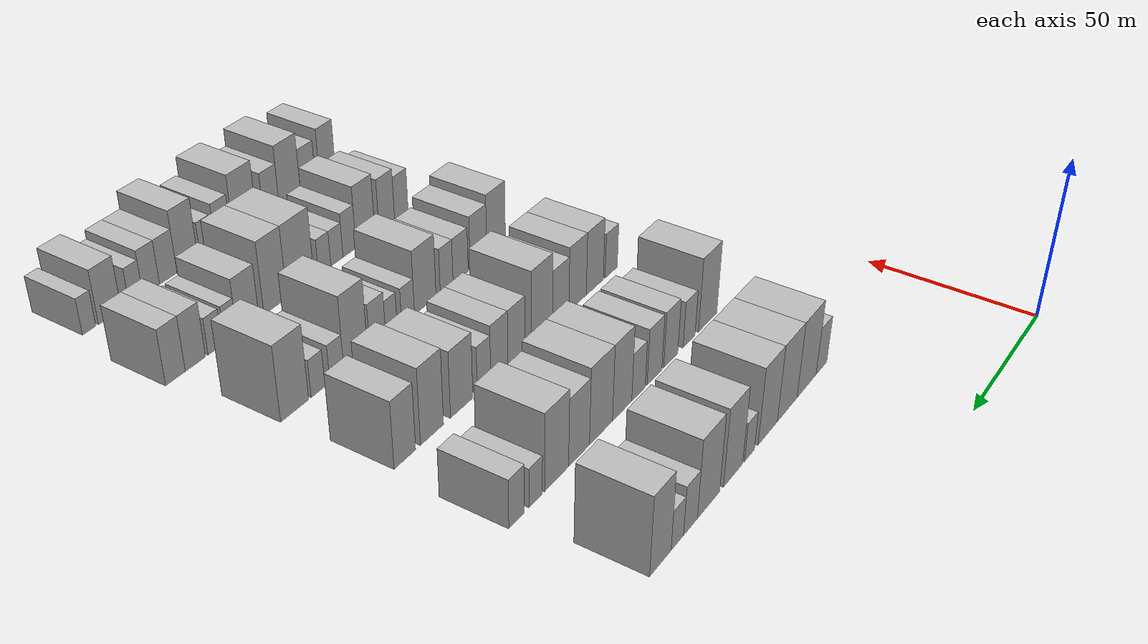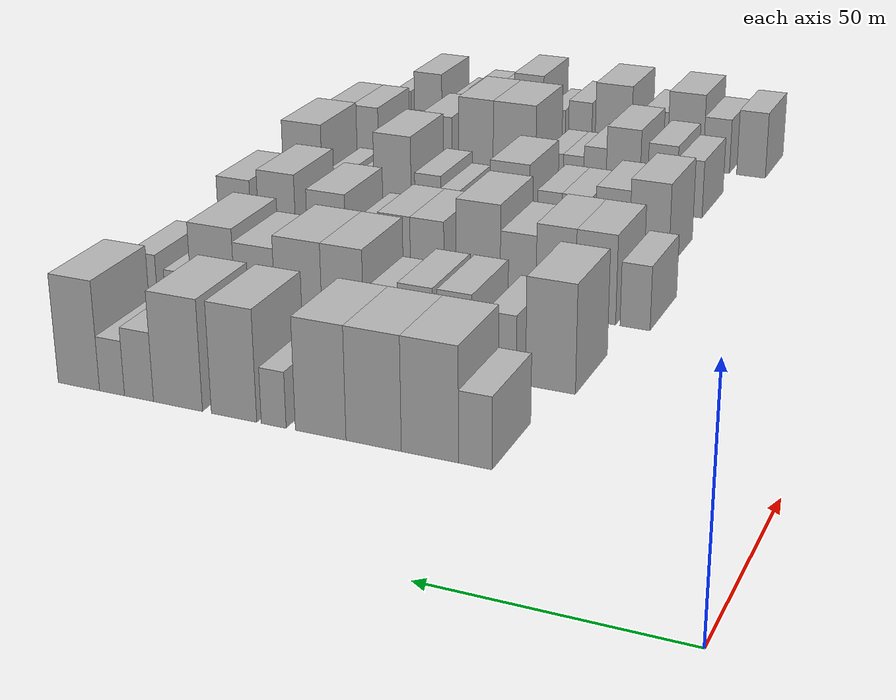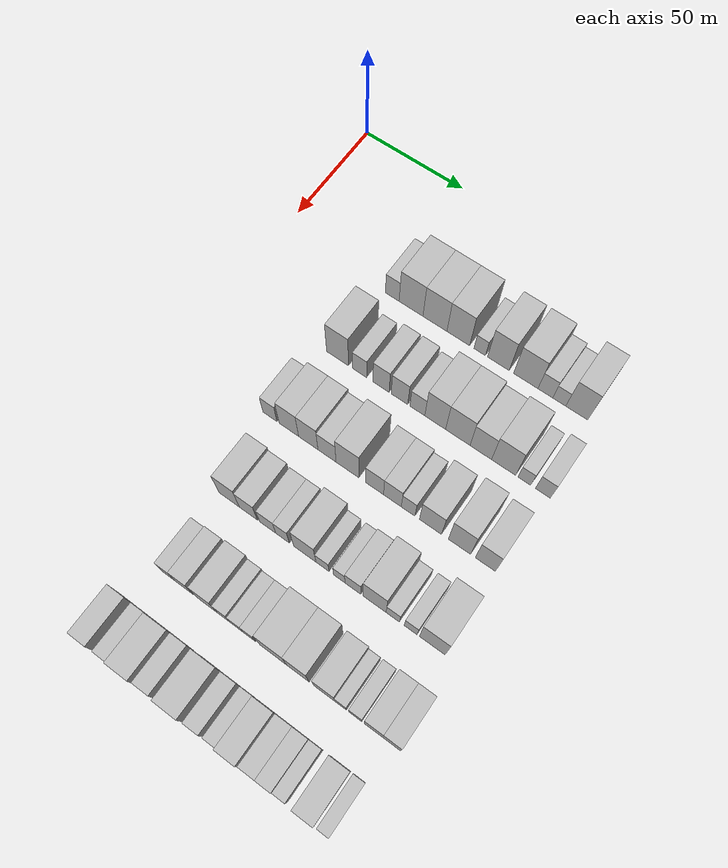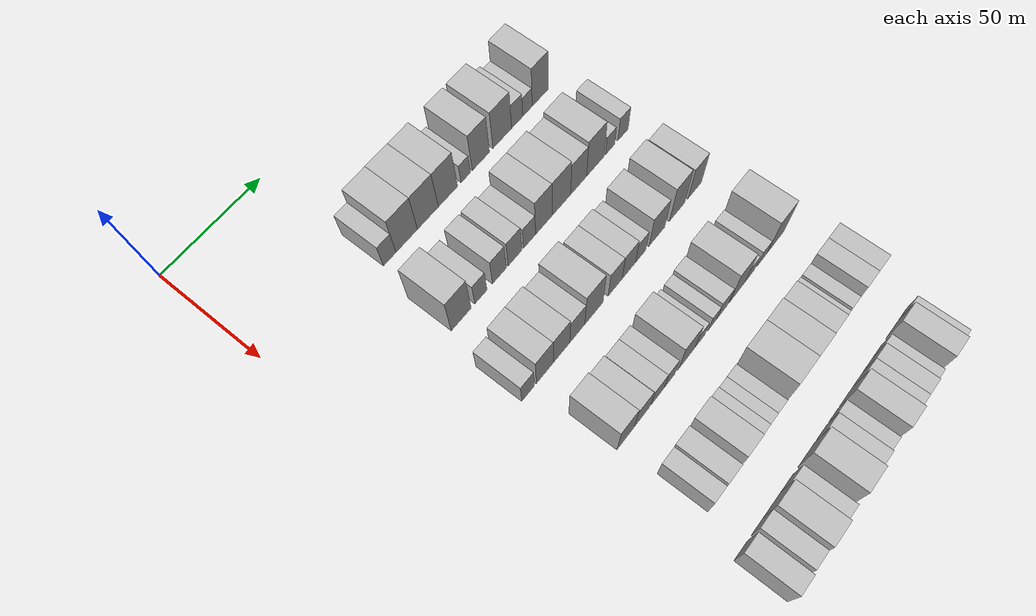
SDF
<sdf version="1.6">
 <world name="default">
  <model name="building_71">
   <static>1</static>
   <pose>50.0000 55.0653 0 0.000000 0.000000 0.000000</pose>
   <link name="link">
    <pose>0 0 7.50 0 0 0</pose>
    <collision name="collision"><geometry><box><size>20.0000 6.7522 15.0000</size></box></geometry></collision>
    <visual name="visual">
     <cast_shadows>0</cast_shadows>
     <geometry><box><size>20.0000 6.7522 15.0000</size></box></geometry>
     <material>
      <script>
       <uri>model://HANNAS_wall/materials/scripts</uri>
       <uri>model://HANNAS_wall/materials/textures</uri>
       <name>vrc/HANNAS_wall</name>
      </script>
     </material>
    </visual>
   </link>
  </model>
  <model name="building_72">
   <static>1</static>
   <pose>50.0000 64.2797 0 0.000000 0.000000 0.000000</pose>
   <link name="link">
    <pose>0 0 12.00 0 0 0</pose>
    <collision name="collision"><geometry><box><size>20.0000 11.6767 24.0000</size></box></geometry></collision>
    <visual name="visual">
     <cast_shadows>0</cast_shadows>
     <geometry><box><size>20.0000 11.6767 24.0000</size></box></geometry>
     <material>
      <script>
       <uri>model://HANNAS_wall/materials/scripts</uri>
       <uri>model://HANNAS_wall/materials/textures</uri>
       <name>vrc/HANNAS_wall</name>
      </script>
     </material>
    </visual>
   </link>
  </model>
  <model name="building_73">
   <static>1</static>
   <pose>50.0000 75.9049 0 0.000000 0.000000 0.000000</pose>
   <link name="link">
    <pose>0 0 12.00 0 0 0</pose>
    <collision name="collision"><geometry><box><size>20.0000 11.5737 24.0000</size></box></geometry></collision>
    <visual name="visual">
     <cast_shadows>0</cast_shadows>
     <geometry><box><size>20.0000 11.5737 24.0000</size></box></geometry>
     <material>
      <script>
       <uri>model://HANNAS_wall/materials/scripts</uri>
       <uri>model://HANNAS_wall/materials/textures</uri>
       <name>vrc/HANNAS_wall</name>
      </script>
     </material>
    </visual>
   </link>
  </model>
  <model name="building_74">
   <static>1</static>
   <pose>50.0000 87.1181 0 0.000000 0.000000 0.000000</pose>
   <link name="link">
    <pose>0 0 12.00 0 0 0</pose>
    <collision name="collision"><geometry><box><size>20.0000 10.8529 24.0000</size></box></geometry></collision>
    <visual name="visual">
     <cast_shadows>0</cast_shadows>
     <geometry><box><size>20.0000 10.8529 24.0000</size></box></geometry>
     <material>
      <script>
       <uri>model://HANNAS_wall/materials/scripts</uri>
       <uri>model://HANNAS_wall/materials/textures</uri>
       <name>vrc/HANNAS_wall</name>
      </script>
     </material>
    </visual>
   </link>
  </model>
  <model name="building_75">
   <static>1</static>
   <pose>50.0000 97.2593 0 0.000000 0.000000 0.000000</pose>
   <link name="link">
    <pose>0 0 6.00 0 0 0</pose>
    <collision name="collision"><geometry><box><size>20.0000 5.4295 12.0000</size></box></geometry></collision>
    <visual name="visual">
     <cast_shadows>0</cast_shadows>
     <geometry><box><size>20.0000 5.4295 12.0000</size></box></geometry>
     <material>
      <script>
       <uri>model://HANNAS_wall/materials/scripts</uri>
       <uri>model://HANNAS_wall/materials/textures</uri>
       <name>vrc/HANNAS_wall</name>
      </script>
     </material>
    </visual>
   </link>
  </model>
  <model name="building_76">
   <static>1</static>
   <pose>50.0000 106.0243 0 0.000000 0.000000 0.000000</pose>
   <link name="link">
    <pose>0 0 12.00 0 0 0</pose>
    <collision name="collision"><geometry><box><size>20.0000 10.1006 24.0000</size></box></geometry></collision>
    <visual name="visual">
     <cast_shadows>0</cast_shadows>
     <geometry><box><size>20.0000 10.1006 24.0000</size></box></geometry>
     <material>
      <script>
       <uri>model://HANNAS_wall/materials/scripts</uri>
       <uri>model://HANNAS_wall/materials/textures</uri>
       <name>vrc/HANNAS_wall</name>
      </script>
     </material>
    </visual>
   </link>
  </model>
  <model name="building_77">
   <static>1</static>
   <pose>50.0000 118.6699 0 0.000000 0.000000 0.000000</pose>
   <link name="link">
    <pose>0 0 12.00 0 0 0</pose>
    <collision name="collision"><geometry><box><size>20.0000 11.1905 24.0000</size></box></geometry></collision>
    <visual name="visual">
     <cast_shadows>0</cast_shadows>
     <geometry><box><size>20.0000 11.1905 24.0000</size></box></geometry>
     <material>
      <script>
       <uri>model://HANNAS_wall/materials/scripts</uri>
       <uri>model://HANNAS_wall/materials/textures</uri>
       <name>vrc/HANNAS_wall</name>
      </script>
     </material>
    </visual>
   </link>
  </model>
  <model name="building_78">
   <static>1</static>
   <pose>50.0000 127.6306 0 0.000000 0.000000 0.000000</pose>
   <link name="link">
    <pose>0 0 7.50 0 0 0</pose>
    <collision name="collision"><geometry><box><size>20.0000 6.7309 15.0000</size></box></geometry></collision>
    <visual name="visual">
     <cast_shadows>0</cast_shadows>
     <geometry><box><size>20.0000 6.7309 15.0000</size></box></geometry>
     <material>
      <script>
       <uri>model://HANNAS_wall/materials/scripts</uri>
       <uri>model://HANNAS_wall/materials/textures</uri>
       <name>vrc/HANNAS_wall</name>
      </script>
     </material>
    </visual>
   </link>
  </model>
  <model name="building_79">
   <static>1</static>
   <pose>50.0000 133.9296 0 0.000000 0.000000 0.000000</pose>
   <link name="link">
    <pose>0 0 6.00 0 0 0</pose>
    <collision name="collision"><geometry><box><size>20.0000 5.8671 12.0000</size></box></geometry></collision>
    <visual name="visual">
     <cast_shadows>0</cast_shadows>
     <geometry><box><size>20.0000 5.8671 12.0000</size></box></geometry>
     <material>
      <script>
       <uri>model://HANNAS_wall/materials/scripts</uri>
       <uri>model://HANNAS_wall/materials/textures</uri>
       <name>vrc/HANNAS_wall</name>
      </script>
     </material>
    </visual>
   </link>
  </model>
  <model name="building_80">
   <static>1</static>
   <pose>50.0000 141.7955 0 0.000000 0.000000 0.000000</pose>
   <link name="link">
    <pose>0 0 12.00 0 0 0</pose>
    <collision name="collision"><geometry><box><size>20.0000 9.8647 24.0000</size></box></geometry></collision>
    <visual name="visual">
     <cast_shadows>0</cast_shadows>
     <geometry><box><size>20.0000 9.8647 24.0000</size></box></geometry>
     <material>
      <script>
       <uri>model://HANNAS_wall/materials/scripts</uri>
       <uri>model://HANNAS_wall/materials/textures</uri>
       <name>vrc/HANNAS_wall</name>
      </script>
     </material>
    </visual>
   </link>
  </model>
  <model name="building_195">
   <static>1</static>
   <pose>85.0000 53.1620 0 0.000000 0.000000 0.000000</pose>
   <link name="link">
    <pose>0 0 12.00 0 0 0</pose>
    <collision name="collision"><geometry><box><size>20.0000 10.7070 24.0000</size></box></geometry></collision>
    <visual name="visual">
     <cast_shadows>0</cast_shadows>
     <geometry><box><size>20.0000 10.7070 24.0000</size></box></geometry>
     <material>
      <script>
       <uri>model://HANNAS_wall/materials/scripts</uri>
       <uri>model://HANNAS_wall/materials/textures</uri>
       <name>vrc/HANNAS_wall</name>
      </script>
     </material>
    </visual>
   </link>
  </model>
  <model name="building_196">
   <static>1</static>
   <pose>85.0000 63.8725 0 0.000000 0.000000 0.000000</pose>
   <link name="link">
    <pose>0 0 7.50 0 0 0</pose>
    <collision name="collision"><geometry><box><size>20.0000 6.7138 15.0000</size></box></geometry></collision>
    <visual name="visual">
     <cast_shadows>0</cast_shadows>
     <geometry><box><size>20.0000 6.7138 15.0000</size></box></geometry>
     <material>
      <script>
       <uri>model://HANNAS_wall/materials/scripts</uri>
       <uri>model://HANNAS_wall/materials/textures</uri>
       <name>vrc/HANNAS_wall</name>
      </script>
     </material>
    </visual>
   </link>
  </model>
  <model name="building_197">
   <static>1</static>
   <pose>85.0000 74.0879 0 0.000000 0.000000 0.000000</pose>
   <link name="link">
    <pose>0 0 9.00 0 0 0</pose>
    <collision name="collision"><geometry><box><size>20.0000 7.7171 18.0000</size></box></geometry></collision>
    <visual name="visual">
     <cast_shadows>0</cast_shadows>
     <geometry><box><size>20.0000 7.7171 18.0000</size></box></geometry>
     <material>
      <script>
       <uri>model://HANNAS_wall/materials/scripts</uri>
       <uri>model://HANNAS_wall/materials/textures</uri>
       <name>vrc/HANNAS_wall</name>
      </script>
     </material>
    </visual>
   </link>
  </model>
  <model name="building_198">
   <static>1</static>
   <pose>85.0000 82.8557 0 0.000000 0.000000 0.000000</pose>
   <link name="link">
    <pose>0 0 9.00 0 0 0</pose>
    <collision name="collision"><geometry><box><size>20.0000 7.8184 18.0000</size></box></geometry></collision>
    <visual name="visual">
     <cast_shadows>0</cast_shadows>
     <geometry><box><size>20.0000 7.8184 18.0000</size></box></geometry>
     <material>
      <script>
       <uri>model://HANNAS_wall/materials/scripts</uri>
       <uri>model://HANNAS_wall/materials/textures</uri>
       <name>vrc/HANNAS_wall</name>
      </script>
     </material>
    </visual>
   </link>
  </model>
  <model name="building_199">
   <static>1</static>
   <pose>85.0000 91.2381 0 0.000000 0.000000 0.000000</pose>
   <link name="link">
    <pose>0 0 7.50 0 0 0</pose>
    <collision name="collision"><geometry><box><size>20.0000 6.9465 15.0000</size></box></geometry></collision>
    <visual name="visual">
     <cast_shadows>0</cast_shadows>
     <geometry><box><size>20.0000 6.9465 15.0000</size></box></geometry>
     <material>
      <script>
       <uri>model://HANNAS_wall/materials/scripts</uri>
       <uri>model://HANNAS_wall/materials/textures</uri>
       <name>vrc/HANNAS_wall</name>
      </script>
     </material>
    </visual>
   </link>
  </model>
  <model name="building_200">
   <static>1</static>
   <pose>85.0000 99.5404 0 0.000000 0.000000 0.000000</pose>
   <link name="link">
    <pose>0 0 12.00 0 0 0</pose>
    <collision name="collision"><geometry><box><size>20.0000 9.6580 24.0000</size></box></geometry></collision>
    <visual name="visual">
     <cast_shadows>0</cast_shadows>
     <geometry><box><size>20.0000 9.6580 24.0000</size></box></geometry>
     <material>
      <script>
       <uri>model://HANNAS_wall/materials/scripts</uri>
       <uri>model://HANNAS_wall/materials/textures</uri>
       <name>vrc/HANNAS_wall</name>
      </script>
     </material>
    </visual>
   </link>
  </model>
  <model name="building_201">
   <static>1</static>
   <pose>85.0000 109.9378 0 0.000000 0.000000 0.000000</pose>
   <link name="link">
    <pose>0 0 12.00 0 0 0</pose>
    <collision name="collision"><geometry><box><size>20.0000 11.1368 24.0000</size></box></geometry></collision>
    <visual name="visual">
     <cast_shadows>0</cast_shadows>
     <geometry><box><size>20.0000 11.1368 24.0000</size></box></geometry>
     <material>
      <script>
       <uri>model://HANNAS_wall/materials/scripts</uri>
       <uri>model://HANNAS_wall/materials/textures</uri>
       <name>vrc/HANNAS_wall</name>
      </script>
     </material>
    </visual>
   </link>
  </model>
  <model name="building_202">
   <static>1</static>
   <pose>85.0000 120.3617 0 0.000000 0.000000 0.000000</pose>
   <link name="link">
    <pose>0 0 10.50 0 0 0</pose>
    <collision name="collision"><geometry><box><size>20.0000 9.7110 21.0000</size></box></geometry></collision>
    <visual name="visual">
     <cast_shadows>0</cast_shadows>
     <geometry><box><size>20.0000 9.7110 21.0000</size></box></geometry>
     <material>
      <script>
       <uri>model://HANNAS_wall/materials/scripts</uri>
       <uri>model://HANNAS_wall/materials/textures</uri>
       <name>vrc/HANNAS_wall</name>
      </script>
     </material>
    </visual>
   </link>
  </model>
  <model name="building_203">
   <static>1</static>
   <pose>85.0000 130.5909 0 0.000000 0.000000 0.000000</pose>
   <link name="link">
    <pose>0 0 12.00 0 0 0</pose>
    <collision name="collision"><geometry><box><size>20.0000 10.7473 24.0000</size></box></geometry></collision>
    <visual name="visual">
     <cast_shadows>0</cast_shadows>
     <geometry><box><size>20.0000 10.7473 24.0000</size></box></geometry>
     <material>
      <script>
       <uri>model://HANNAS_wall/materials/scripts</uri>
       <uri>model://HANNAS_wall/materials/textures</uri>
       <name>vrc/HANNAS_wall</name>
      </script>
     </material>
    </visual>
   </link>
  </model>
  <model name="building_204">
   <static>1</static>
   <pose>85.0000 139.8037 0 0.000000 0.000000 0.000000</pose>
   <link name="link">
    <pose>0 0 6.00 0 0 0</pose>
    <collision name="collision"><geometry><box><size>20.0000 5.6783 12.0000</size></box></geometry></collision>
    <visual name="visual">
     <cast_shadows>0</cast_shadows>
     <geometry><box><size>20.0000 5.6783 12.0000</size></box></geometry>
     <material>
      <script>
       <uri>model://HANNAS_wall/materials/scripts</uri>
       <uri>model://HANNAS_wall/materials/textures</uri>
       <name>vrc/HANNAS_wall</name>
      </script>
     </material>
    </visual>
   </link>
  </model>
  <model name="building_205">
   <static>1</static>
   <pose>85.0000 147.9279 0 0.000000 0.000000 0.000000</pose>
   <link name="link">
    <pose>0 0 7.50 0 0 0</pose>
    <collision name="collision"><geometry><box><size>20.0000 6.5701 15.0000</size></box></geometry></collision>
    <visual name="visual">
     <cast_shadows>0</cast_shadows>
     <geometry><box><size>20.0000 6.5701 15.0000</size></box></geometry>
     <material>
      <script>
       <uri>model://HANNAS_wall/materials/scripts</uri>
       <uri>model://HANNAS_wall/materials/textures</uri>
       <name>vrc/HANNAS_wall</name>
      </script>
     </material>
    </visual>
   </link>
  </model>
  <model name="building_325">
   <static>1</static>
   <pose>120.0000 46.5221 0 0.000000 0.000000 0.000000</pose>
   <link name="link">
    <pose>0 0 7.50 0 0 0</pose>
    <collision name="collision"><geometry><box><size>20.0000 6.8273 15.0000</size></box></geometry></collision>
    <visual name="visual">
     <cast_shadows>0</cast_shadows>
     <geometry><box><size>20.0000 6.8273 15.0000</size></box></geometry>
     <material>
      <script>
       <uri>model://HANNAS_wall/materials/scripts</uri>
       <uri>model://HANNAS_wall/materials/textures</uri>
       <name>vrc/HANNAS_wall</name>
      </script>
     </material>
    </visual>
   </link>
  </model>
  <model name="building_326">
   <static>1</static>
   <pose>120.0000 55.6046 0 0.000000 0.000000 0.000000</pose>
   <link name="link">
    <pose>0 0 10.50 0 0 0</pose>
    <collision name="collision"><geometry><box><size>20.0000 9.3377 21.0000</size></box></geometry></collision>
    <visual name="visual">
     <cast_shadows>0</cast_shadows>
     <geometry><box><size>20.0000 9.3377 21.0000</size></box></geometry>
     <material>
      <script>
       <uri>model://HANNAS_wall/materials/scripts</uri>
       <uri>model://HANNAS_wall/materials/textures</uri>
       <name>vrc/HANNAS_wall</name>
      </script>
     </material>
    </visual>
   </link>
  </model>
  <model name="building_327">
   <static>1</static>
   <pose>120.0000 64.8813 0 0.000000 0.000000 0.000000</pose>
   <link name="link">
    <pose>0 0 10.50 0 0 0</pose>
    <collision name="collision"><geometry><box><size>20.0000 9.2157 21.0000</size></box></geometry></collision>
    <visual name="visual">
     <cast_shadows>0</cast_shadows>
     <geometry><box><size>20.0000 9.2157 21.0000</size></box></geometry>
     <material>
      <script>
       <uri>model://HANNAS_wall/materials/scripts</uri>
       <uri>model://HANNAS_wall/materials/textures</uri>
       <name>vrc/HANNAS_wall</name>
      </script>
     </material>
    </visual>
   </link>
  </model>
  <model name="building_328">
   <static>1</static>
   <pose>120.0000 73.7412 0 0.000000 0.000000 0.000000</pose>
   <link name="link">
    <pose>0 0 9.00 0 0 0</pose>
    <collision name="collision"><geometry><box><size>20.0000 8.5041 18.0000</size></box></geometry></collision>
    <visual name="visual">
     <cast_shadows>0</cast_shadows>
     <geometry><box><size>20.0000 8.5041 18.0000</size></box></geometry>
     <material>
      <script>
       <uri>model://HANNAS_wall/materials/scripts</uri>
       <uri>model://HANNAS_wall/materials/textures</uri>
       <name>vrc/HANNAS_wall</name>
      </script>
     </material>
    </visual>
   </link>
  </model>
  <model name="building_329">
   <static>1</static>
   <pose>120.0000 83.2931 0 0.000000 0.000000 0.000000</pose>
   <link name="link">
    <pose>0 0 12.00 0 0 0</pose>
    <collision name="collision"><geometry><box><size>20.0000 10.5996 24.0000</size></box></geometry></collision>
    <visual name="visual">
     <cast_shadows>0</cast_shadows>
     <geometry><box><size>20.0000 10.5996 24.0000</size></box></geometry>
     <material>
      <script>
       <uri>model://HANNAS_wall/materials/scripts</uri>
       <uri>model://HANNAS_wall/materials/textures</uri>
       <name>vrc/HANNAS_wall</name>
      </script>
     </material>
    </visual>
   </link>
  </model>
  <model name="building_330">
   <static>1</static>
   <pose>120.0000 95.7283 0 0.000000 0.000000 0.000000</pose>
   <link name="link">
    <pose>0 0 9.00 0 0 0</pose>
    <collision name="collision"><geometry><box><size>20.0000 8.2708 18.0000</size></box></geometry></collision>
    <visual name="visual">
     <cast_shadows>0</cast_shadows>
     <geometry><box><size>20.0000 8.2708 18.0000</size></box></geometry>
     <material>
      <script>
       <uri>model://HANNAS_wall/materials/scripts</uri>
       <uri>model://HANNAS_wall/materials/textures</uri>
       <name>vrc/HANNAS_wall</name>
      </script>
     </material>
    </visual>
   </link>
  </model>
  <model name="building_331">
   <static>1</static>
   <pose>120.0000 103.8749 0 0.000000 0.000000 0.000000</pose>
   <link name="link">
    <pose>0 0 9.00 0 0 0</pose>
    <collision name="collision"><geometry><box><size>20.0000 8.0223 18.0000</size></box></geometry></collision>
    <visual name="visual">
     <cast_shadows>0</cast_shadows>
     <geometry><box><size>20.0000 8.0223 18.0000</size></box></geometry>
     <material>
      <script>
       <uri>model://HANNAS_wall/materials/scripts</uri>
       <uri>model://HANNAS_wall/materials/textures</uri>
       <name>vrc/HANNAS_wall</name>
      </script>
     </material>
    </visual>
   </link>
  </model>
  <model name="building_332">
   <static>1</static>
   <pose>120.0000 110.9622 0 0.000000 0.000000 0.000000</pose>
   <link name="link">
    <pose>0 0 7.50 0 0 0</pose>
    <collision name="collision"><geometry><box><size>20.0000 6.1524 15.0000</size></box></geometry></collision>
    <visual name="visual">
     <cast_shadows>0</cast_shadows>
     <geometry><box><size>20.0000 6.1524 15.0000</size></box></geometry>
     <material>
      <script>
       <uri>model://HANNAS_wall/materials/scripts</uri>
       <uri>model://HANNAS_wall/materials/textures</uri>
       <name>vrc/HANNAS_wall</name>
      </script>
     </material>
    </visual>
   </link>
  </model>
  <model name="building_333">
   <static>1</static>
   <pose>120.0000 120.9530 0 0.000000 0.000000 0.000000</pose>
   <link name="link">
    <pose>0 0 10.50 0 0 0</pose>
    <collision name="collision"><geometry><box><size>20.0000 9.8291 21.0000</size></box></geometry></collision>
    <visual name="visual">
     <cast_shadows>0</cast_shadows>
     <geometry><box><size>20.0000 9.8291 21.0000</size></box></geometry>
     <material>
      <script>
       <uri>model://HANNAS_wall/materials/scripts</uri>
       <uri>model://HANNAS_wall/materials/textures</uri>
       <name>vrc/HANNAS_wall</name>
      </script>
     </material>
    </visual>
   </link>
  </model>
  <model name="building_334">
   <static>1</static>
   <pose>120.0000 133.7231 0 0.000000 0.000000 0.000000</pose>
   <link name="link">
    <pose>0 0 12.00 0 0 0</pose>
    <collision name="collision"><geometry><box><size>20.0000 9.7110 24.0000</size></box></geometry></collision>
    <visual name="visual">
     <cast_shadows>0</cast_shadows>
     <geometry><box><size>20.0000 9.7110 24.0000</size></box></geometry>
     <material>
      <script>
       <uri>model://HANNAS_wall/materials/scripts</uri>
       <uri>model://HANNAS_wall/materials/textures</uri>
       <name>vrc/HANNAS_wall</name>
      </script>
     </material>
    </visual>
   </link>
  </model>
  <model name="building_335">
   <static>1</static>
   <pose>120.0000 144.9361 0 0.000000 0.000000 0.000000</pose>
   <link name="link">
    <pose>0 0 10.50 0 0 0</pose>
    <collision name="collision"><geometry><box><size>20.0000 8.7150 21.0000</size></box></geometry></collision>
    <visual name="visual">
     <cast_shadows>0</cast_shadows>
     <geometry><box><size>20.0000 8.7150 21.0000</size></box></geometry>
     <material>
      <script>
       <uri>model://HANNAS_wall/materials/scripts</uri>
       <uri>model://HANNAS_wall/materials/textures</uri>
       <name>vrc/HANNAS_wall</name>
      </script>
     </material>
    </visual>
   </link>
  </model>
  <model name="building_454">
   <static>1</static>
   <pose>155.0000 54.3653 0 0.000000 0.000000 0.000000</pose>
   <link name="link">
    <pose>0 0 10.50 0 0 0</pose>
    <collision name="collision"><geometry><box><size>20.0000 9.7118 21.0000</size></box></geometry></collision>
    <visual name="visual">
     <cast_shadows>0</cast_shadows>
     <geometry><box><size>20.0000 9.7118 21.0000</size></box></geometry>
     <material>
      <script>
       <uri>model://HANNAS_wall/materials/scripts</uri>
       <uri>model://HANNAS_wall/materials/textures</uri>
       <name>vrc/HANNAS_wall</name>
      </script>
     </material>
    </visual>
   </link>
  </model>
  <model name="building_455">
   <static>1</static>
   <pose>155.0000 63.4675 0 0.000000 0.000000 0.000000</pose>
   <link name="link">
    <pose>0 0 9.00 0 0 0</pose>
    <collision name="collision"><geometry><box><size>20.0000 8.4926 18.0000</size></box></geometry></collision>
    <visual name="visual">
     <cast_shadows>0</cast_shadows>
     <geometry><box><size>20.0000 8.4926 18.0000</size></box></geometry>
     <material>
      <script>
       <uri>model://HANNAS_wall/materials/scripts</uri>
       <uri>model://HANNAS_wall/materials/textures</uri>
       <name>vrc/HANNAS_wall</name>
      </script>
     </material>
    </visual>
   </link>
  </model>
  <model name="building_456">
   <static>1</static>
   <pose>155.0000 72.4491 0 0.000000 0.000000 0.000000</pose>
   <link name="link">
    <pose>0 0 7.50 0 0 0</pose>
    <collision name="collision"><geometry><box><size>20.0000 7.4707 15.0000</size></box></geometry></collision>
    <visual name="visual">
     <cast_shadows>0</cast_shadows>
     <geometry><box><size>20.0000 7.4707 15.0000</size></box></geometry>
     <material>
      <script>
       <uri>model://HANNAS_wall/materials/scripts</uri>
       <uri>model://HANNAS_wall/materials/textures</uri>
       <name>vrc/HANNAS_wall</name>
      </script>
     </material>
    </visual>
   </link>
  </model>
  <model name="building_457">
   <static>1</static>
   <pose>155.0000 79.2889 0 0.000000 0.000000 0.000000</pose>
   <link name="link">
    <pose>0 0 7.50 0 0 0</pose>
    <collision name="collision"><geometry><box><size>20.0000 6.2090 15.0000</size></box></geometry></collision>
    <visual name="visual">
     <cast_shadows>0</cast_shadows>
     <geometry><box><size>20.0000 6.2090 15.0000</size></box></geometry>
     <material>
      <script>
       <uri>model://HANNAS_wall/materials/scripts</uri>
       <uri>model://HANNAS_wall/materials/textures</uri>
       <name>vrc/HANNAS_wall</name>
      </script>
     </material>
    </visual>
   </link>
  </model>
  <model name="building_458">
   <static>1</static>
   <pose>155.0000 89.4584 0 0.000000 0.000000 0.000000</pose>
   <link name="link">
    <pose>0 0 10.50 0 0 0</pose>
    <collision name="collision"><geometry><box><size>20.0000 10.1300 21.0000</size></box></geometry></collision>
    <visual name="visual">
     <cast_shadows>0</cast_shadows>
     <geometry><box><size>20.0000 10.1300 21.0000</size></box></geometry>
     <material>
      <script>
       <uri>model://HANNAS_wall/materials/scripts</uri>
       <uri>model://HANNAS_wall/materials/textures</uri>
       <name>vrc/HANNAS_wall</name>
      </script>
     </material>
    </visual>
   </link>
  </model>
  <model name="building_459">
   <static>1</static>
   <pose>155.0000 97.4571 0 0.000000 0.000000 0.000000</pose>
   <link name="link">
    <pose>0 0 6.00 0 0 0</pose>
    <collision name="collision"><geometry><box><size>20.0000 5.8675 12.0000</size></box></geometry></collision>
    <visual name="visual">
     <cast_shadows>0</cast_shadows>
     <geometry><box><size>20.0000 5.8675 12.0000</size></box></geometry>
     <material>
      <script>
       <uri>model://HANNAS_wall/materials/scripts</uri>
       <uri>model://HANNAS_wall/materials/textures</uri>
       <name>vrc/HANNAS_wall</name>
      </script>
     </material>
    </visual>
   </link>
  </model>
  <model name="building_460">
   <static>1</static>
   <pose>155.0000 104.9617 0 0.000000 0.000000 0.000000</pose>
   <link name="link">
    <pose>0 0 6.00 0 0 0</pose>
    <collision name="collision"><geometry><box><size>20.0000 5.1418 12.0000</size></box></geometry></collision>
    <visual name="visual">
     <cast_shadows>0</cast_shadows>
     <geometry><box><size>20.0000 5.1418 12.0000</size></box></geometry>
     <material>
      <script>
       <uri>model://HANNAS_wall/materials/scripts</uri>
       <uri>model://HANNAS_wall/materials/textures</uri>
       <name>vrc/HANNAS_wall</name>
      </script>
     </material>
    </visual>
   </link>
  </model>
  <model name="building_461">
   <static>1</static>
   <pose>155.0000 111.0043 0 0.000000 0.000000 0.000000</pose>
   <link name="link">
    <pose>0 0 7.50 0 0 0</pose>
    <collision name="collision"><geometry><box><size>20.0000 6.9434 15.0000</size></box></geometry></collision>
    <visual name="visual">
     <cast_shadows>0</cast_shadows>
     <geometry><box><size>20.0000 6.9434 15.0000</size></box></geometry>
     <material>
      <script>
       <uri>model://HANNAS_wall/materials/scripts</uri>
       <uri>model://HANNAS_wall/materials/textures</uri>
       <name>vrc/HANNAS_wall</name>
      </script>
     </material>
    </visual>
   </link>
  </model>
  <model name="building_462">
   <static>1</static>
   <pose>155.0000 120.4931 0 0.000000 0.000000 0.000000</pose>
   <link name="link">
    <pose>0 0 12.00 0 0 0</pose>
    <collision name="collision"><geometry><box><size>20.0000 10.0341 24.0000</size></box></geometry></collision>
    <visual name="visual">
     <cast_shadows>0</cast_shadows>
     <geometry><box><size>20.0000 10.0341 24.0000</size></box></geometry>
     <material>
      <script>
       <uri>model://HANNAS_wall/materials/scripts</uri>
       <uri>model://HANNAS_wall/materials/textures</uri>
       <name>vrc/HANNAS_wall</name>
      </script>
     </material>
    </visual>
   </link>
  </model>
  <model name="building_463">
   <static>1</static>
   <pose>155.0000 128.4087 0 0.000000 0.000000 0.000000</pose>
   <link name="link">
    <pose>0 0 6.00 0 0 0</pose>
    <collision name="collision"><geometry><box><size>20.0000 5.7973 12.0000</size></box></geometry></collision>
    <visual name="visual">
     <cast_shadows>0</cast_shadows>
     <geometry><box><size>20.0000 5.7973 12.0000</size></box></geometry>
     <material>
      <script>
       <uri>model://HANNAS_wall/materials/scripts</uri>
       <uri>model://HANNAS_wall/materials/textures</uri>
       <name>vrc/HANNAS_wall</name>
      </script>
     </material>
    </visual>
   </link>
  </model>
  <model name="building_464">
   <static>1</static>
   <pose>155.0000 136.0799 0 0.000000 0.000000 0.000000</pose>
   <link name="link">
    <pose>0 0 6.00 0 0 0</pose>
    <collision name="collision"><geometry><box><size>20.0000 5.5450 12.0000</size></box></geometry></collision>
    <visual name="visual">
     <cast_shadows>0</cast_shadows>
     <geometry><box><size>20.0000 5.5450 12.0000</size></box></geometry>
     <material>
      <script>
       <uri>model://HANNAS_wall/materials/scripts</uri>
       <uri>model://HANNAS_wall/materials/textures</uri>
       <name>vrc/HANNAS_wall</name>
      </script>
     </material>
    </visual>
   </link>
  </model>
  <model name="building_465">
   <static>1</static>
   <pose>155.0000 145.3098 0 0.000000 0.000000 0.000000</pose>
   <link name="link">
    <pose>0 0 12.00 0 0 0</pose>
    <collision name="collision"><geometry><box><size>20.0000 10.9148 24.0000</size></box></geometry></collision>
    <visual name="visual">
     <cast_shadows>0</cast_shadows>
     <geometry><box><size>20.0000 10.9148 24.0000</size></box></geometry>
     <material>
      <script>
       <uri>model://HANNAS_wall/materials/scripts</uri>
       <uri>model://HANNAS_wall/materials/textures</uri>
       <name>vrc/HANNAS_wall</name>
      </script>
     </material>
    </visual>
   </link>
  </model>
  <model name="building_579">
   <static>1</static>
   <pose>190.0000 54.6994 0 0.000000 0.000000 0.000000</pose>
   <link name="link">
    <pose>0 0 7.50 0 0 0</pose>
    <collision name="collision"><geometry><box><size>20.0000 6.7930 15.0000</size></box></geometry></collision>
    <visual name="visual">
     <cast_shadows>0</cast_shadows>
     <geometry><box><size>20.0000 6.7930 15.0000</size></box></geometry>
     <material>
      <script>
       <uri>model://HANNAS_wall/materials/scripts</uri>
       <uri>model://HANNAS_wall/materials/textures</uri>
       <name>vrc/HANNAS_wall</name>
      </script>
     </material>
    </visual>
   </link>
  </model>
  <model name="building_580">
   <static>1</static>
   <pose>190.0000 61.9472 0 0.000000 0.000000 0.000000</pose>
   <link name="link">
    <pose>0 0 9.00 0 0 0</pose>
    <collision name="collision"><geometry><box><size>20.0000 7.7025 18.0000</size></box></geometry></collision>
    <visual name="visual">
     <cast_shadows>0</cast_shadows>
     <geometry><box><size>20.0000 7.7025 18.0000</size></box></geometry>
     <material>
      <script>
       <uri>model://HANNAS_wall/materials/scripts</uri>
       <uri>model://HANNAS_wall/materials/textures</uri>
       <name>vrc/HANNAS_wall</name>
      </script>
     </material>
    </visual>
   </link>
  </model>
  <model name="building_581">
   <static>1</static>
   <pose>190.0000 72.3160 0 0.000000 0.000000 0.000000</pose>
   <link name="link">
    <pose>0 0 10.50 0 0 0</pose>
    <collision name="collision"><geometry><box><size>20.0000 9.0351 21.0000</size></box></geometry></collision>
    <visual name="visual">
     <cast_shadows>0</cast_shadows>
     <geometry><box><size>20.0000 9.0351 21.0000</size></box></geometry>
     <material>
      <script>
       <uri>model://HANNAS_wall/materials/scripts</uri>
       <uri>model://HANNAS_wall/materials/textures</uri>
       <name>vrc/HANNAS_wall</name>
      </script>
     </material>
    </visual>
   </link>
  </model>
  <model name="building_582">
   <static>1</static>
   <pose>190.0000 79.8505 0 0.000000 0.000000 0.000000</pose>
   <link name="link">
    <pose>0 0 7.50 0 0 0</pose>
    <collision name="collision"><geometry><box><size>20.0000 6.0339 15.0000</size></box></geometry></collision>
    <visual name="visual">
     <cast_shadows>0</cast_shadows>
     <geometry><box><size>20.0000 6.0339 15.0000</size></box></geometry>
     <material>
      <script>
       <uri>model://HANNAS_wall/materials/scripts</uri>
       <uri>model://HANNAS_wall/materials/textures</uri>
       <name>vrc/HANNAS_wall</name>
      </script>
     </material>
    </visual>
   </link>
  </model>
  <model name="building_583">
   <static>1</static>
   <pose>190.0000 85.6686 0 0.000000 0.000000 0.000000</pose>
   <link name="link">
    <pose>0 0 6.00 0 0 0</pose>
    <collision name="collision"><geometry><box><size>20.0000 5.6023 12.0000</size></box></geometry></collision>
    <visual name="visual">
     <cast_shadows>0</cast_shadows>
     <geometry><box><size>20.0000 5.6023 12.0000</size></box></geometry>
     <material>
      <script>
       <uri>model://HANNAS_wall/materials/scripts</uri>
       <uri>model://HANNAS_wall/materials/textures</uri>
       <name>vrc/HANNAS_wall</name>
      </script>
     </material>
    </visual>
   </link>
  </model>
  <model name="building_584">
   <static>1</static>
   <pose>190.0000 91.2436 0 0.000000 0.000000 0.000000</pose>
   <link name="link">
    <pose>0 0 6.00 0 0 0</pose>
    <collision name="collision"><geometry><box><size>20.0000 5.5476 12.0000</size></box></geometry></collision>
    <visual name="visual">
     <cast_shadows>0</cast_shadows>
     <geometry><box><size>20.0000 5.5476 12.0000</size></box></geometry>
     <material>
      <script>
       <uri>model://HANNAS_wall/materials/scripts</uri>
       <uri>model://HANNAS_wall/materials/textures</uri>
       <name>vrc/HANNAS_wall</name>
      </script>
     </material>
    </visual>
   </link>
  </model>
  <model name="building_585">
   <static>1</static>
   <pose>190.0000 101.9484 0 0.000000 0.000000 0.000000</pose>
   <link name="link">
    <pose>0 0 12.00 0 0 0</pose>
    <collision name="collision"><geometry><box><size>20.0000 11.8621 24.0000</size></box></geometry></collision>
    <visual name="visual">
     <cast_shadows>0</cast_shadows>
     <geometry><box><size>20.0000 11.8621 24.0000</size></box></geometry>
     <material>
      <script>
       <uri>model://HANNAS_wall/materials/scripts</uri>
       <uri>model://HANNAS_wall/materials/textures</uri>
       <name>vrc/HANNAS_wall</name>
      </script>
     </material>
    </visual>
   </link>
  </model>
  <model name="building_586">
   <static>1</static>
   <pose>190.0000 112.7258 0 0.000000 0.000000 0.000000</pose>
   <link name="link">
    <pose>0 0 12.00 0 0 0</pose>
    <collision name="collision"><geometry><box><size>20.0000 9.6926 24.0000</size></box></geometry></collision>
    <visual name="visual">
     <cast_shadows>0</cast_shadows>
     <geometry><box><size>20.0000 9.6926 24.0000</size></box></geometry>
     <material>
      <script>
       <uri>model://HANNAS_wall/materials/scripts</uri>
       <uri>model://HANNAS_wall/materials/textures</uri>
       <name>vrc/HANNAS_wall</name>
      </script>
     </material>
    </visual>
   </link>
  </model>
  <model name="building_587">
   <static>1</static>
   <pose>190.0000 124.0667 0 0.000000 0.000000 0.000000</pose>
   <link name="link">
    <pose>0 0 9.00 0 0 0</pose>
    <collision name="collision"><geometry><box><size>20.0000 8.9891 18.0000</size></box></geometry></collision>
    <visual name="visual">
     <cast_shadows>0</cast_shadows>
     <geometry><box><size>20.0000 8.9891 18.0000</size></box></geometry>
     <material>
      <script>
       <uri>model://HANNAS_wall/materials/scripts</uri>
       <uri>model://HANNAS_wall/materials/textures</uri>
       <name>vrc/HANNAS_wall</name>
      </script>
     </material>
    </visual>
   </link>
  </model>
  <model name="building_588">
   <static>1</static>
   <pose>190.0000 131.0128 0 0.000000 0.000000 0.000000</pose>
   <link name="link">
    <pose>0 0 6.00 0 0 0</pose>
    <collision name="collision"><geometry><box><size>20.0000 4.9031 12.0000</size></box></geometry></collision>
    <visual name="visual">
     <cast_shadows>0</cast_shadows>
     <geometry><box><size>20.0000 4.9031 12.0000</size></box></geometry>
     <material>
      <script>
       <uri>model://HANNAS_wall/materials/scripts</uri>
       <uri>model://HANNAS_wall/materials/textures</uri>
       <name>vrc/HANNAS_wall</name>
      </script>
     </material>
    </visual>
   </link>
  </model>
  <model name="building_589">
   <static>1</static>
   <pose>190.0000 137.2011 0 0.000000 0.000000 0.000000</pose>
   <link name="link">
    <pose>0 0 6.00 0 0 0</pose>
    <collision name="collision"><geometry><box><size>20.0000 5.4736 12.0000</size></box></geometry></collision>
    <visual name="visual">
     <cast_shadows>0</cast_shadows>
     <geometry><box><size>20.0000 5.4736 12.0000</size></box></geometry>
     <material>
      <script>
       <uri>model://HANNAS_wall/materials/scripts</uri>
       <uri>model://HANNAS_wall/materials/textures</uri>
       <name>vrc/HANNAS_wall</name>
      </script>
     </material>
    </visual>
   </link>
  </model>
  <model name="building_590">
   <static>1</static>
   <pose>190.0000 144.7639 0 0.000000 0.000000 0.000000</pose>
   <link name="link">
    <pose>0 0 9.00 0 0 0</pose>
    <collision name="collision"><geometry><box><size>20.0000 7.6521 18.0000</size></box></geometry></collision>
    <visual name="visual">
     <cast_shadows>0</cast_shadows>
     <geometry><box><size>20.0000 7.6521 18.0000</size></box></geometry>
     <material>
      <script>
       <uri>model://HANNAS_wall/materials/scripts</uri>
       <uri>model://HANNAS_wall/materials/textures</uri>
       <name>vrc/HANNAS_wall</name>
      </script>
     </material>
    </visual>
   </link>
  </model>
  <model name="building_591">
   <static>1</static>
   <pose>190.0000 152.2492 0 0.000000 0.000000 0.000000</pose>
   <link name="link">
    <pose>0 0 9.00 0 0 0</pose>
    <collision name="collision"><geometry><box><size>20.0000 7.3184 18.0000</size></box></geometry></collision>
    <visual name="visual">
     <cast_shadows>0</cast_shadows>
     <geometry><box><size>20.0000 7.3184 18.0000</size></box></geometry>
     <material>
      <script>
       <uri>model://HANNAS_wall/materials/scripts</uri>
       <uri>model://HANNAS_wall/materials/textures</uri>
       <name>vrc/HANNAS_wall</name>
      </script>
     </material>
    </visual>
   </link>
  </model>
  <model name="building_710">
   <static>1</static>
   <pose>225.0000 47.7117 0 0.000000 0.000000 0.000000</pose>
   <link name="link">
    <pose>0 0 9.00 0 0 0</pose>
    <collision name="collision"><geometry><box><size>20.0000 7.8207 18.0000</size></box></geometry></collision>
    <visual name="visual">
     <cast_shadows>0</cast_shadows>
     <geometry><box><size>20.0000 7.8207 18.0000</size></box></geometry>
     <material>
      <script>
       <uri>model://HANNAS_wall/materials/scripts</uri>
       <uri>model://HANNAS_wall/materials/textures</uri>
       <name>vrc/HANNAS_wall</name>
      </script>
     </material>
    </visual>
   </link>
  </model>
  <model name="building_711">
   <static>1</static>
   <pose>225.0000 57.2948 0 0.000000 0.000000 0.000000</pose>
   <link name="link">
    <pose>0 0 7.50 0 0 0</pose>
    <collision name="collision"><geometry><box><size>20.0000 7.3457 15.0000</size></box></geometry></collision>
    <visual name="visual">
     <cast_shadows>0</cast_shadows>
     <geometry><box><size>20.0000 7.3457 15.0000</size></box></geometry>
     <material>
      <script>
       <uri>model://HANNAS_wall/materials/scripts</uri>
       <uri>model://HANNAS_wall/materials/textures</uri>
       <name>vrc/HANNAS_wall</name>
      </script>
     </material>
    </visual>
   </link>
  </model>
  <model name="building_712">
   <static>1</static>
   <pose>225.0000 65.9837 0 0.000000 0.000000 0.000000</pose>
   <link name="link">
    <pose>0 0 10.50 0 0 0</pose>
    <collision name="collision"><geometry><box><size>20.0000 10.0321 21.0000</size></box></geometry></collision>
    <visual name="visual">
     <cast_shadows>0</cast_shadows>
     <geometry><box><size>20.0000 10.0321 21.0000</size></box></geometry>
     <material>
      <script>
       <uri>model://HANNAS_wall/materials/scripts</uri>
       <uri>model://HANNAS_wall/materials/textures</uri>
       <name>vrc/HANNAS_wall</name>
      </script>
     </material>
    </visual>
   </link>
  </model>
  <model name="building_713">
   <static>1</static>
   <pose>225.0000 74.6476 0 0.000000 0.000000 0.000000</pose>
   <link name="link">
    <pose>0 0 7.50 0 0 0</pose>
    <collision name="collision"><geometry><box><size>20.0000 7.2957 15.0000</size></box></geometry></collision>
    <visual name="visual">
     <cast_shadows>0</cast_shadows>
     <geometry><box><size>20.0000 7.2957 15.0000</size></box></geometry>
     <material>
      <script>
       <uri>model://HANNAS_wall/materials/scripts</uri>
       <uri>model://HANNAS_wall/materials/textures</uri>
       <name>vrc/HANNAS_wall</name>
      </script>
     </material>
    </visual>
   </link>
  </model>
  <model name="building_714">
   <static>1</static>
   <pose>225.0000 86.5080 0 0.000000 0.000000 0.000000</pose>
   <link name="link">
    <pose>0 0 10.50 0 0 0</pose>
    <collision name="collision"><geometry><box><size>20.0000 10.4250 21.0000</size></box></geometry></collision>
    <visual name="visual">
     <cast_shadows>0</cast_shadows>
     <geometry><box><size>20.0000 10.4250 21.0000</size></box></geometry>
     <material>
      <script>
       <uri>model://HANNAS_wall/materials/scripts</uri>
       <uri>model://HANNAS_wall/materials/textures</uri>
       <name>vrc/HANNAS_wall</name>
      </script>
     </material>
    </visual>
   </link>
  </model>
  <model name="building_715">
   <static>1</static>
   <pose>225.0000 96.1049 0 0.000000 0.000000 0.000000</pose>
   <link name="link">
    <pose>0 0 7.50 0 0 0</pose>
    <collision name="collision"><geometry><box><size>20.0000 6.7689 15.0000</size></box></geometry></collision>
    <visual name="visual">
     <cast_shadows>0</cast_shadows>
     <geometry><box><size>20.0000 6.7689 15.0000</size></box></geometry>
     <material>
      <script>
       <uri>model://HANNAS_wall/materials/scripts</uri>
       <uri>model://HANNAS_wall/materials/textures</uri>
       <name>vrc/HANNAS_wall</name>
      </script>
     </material>
    </visual>
   </link>
  </model>
  <model name="building_716">
   <static>1</static>
   <pose>225.0000 103.2161 0 0.000000 0.000000 0.000000</pose>
   <link name="link">
    <pose>0 0 6.00 0 0 0</pose>
    <collision name="collision"><geometry><box><size>20.0000 5.4534 12.0000</size></box></geometry></collision>
    <visual name="visual">
     <cast_shadows>0</cast_shadows>
     <geometry><box><size>20.0000 5.4534 12.0000</size></box></geometry>
     <material>
      <script>
       <uri>model://HANNAS_wall/materials/scripts</uri>
       <uri>model://HANNAS_wall/materials/textures</uri>
       <name>vrc/HANNAS_wall</name>
      </script>
     </material>
    </visual>
   </link>
  </model>
  <model name="building_717">
   <static>1</static>
   <pose>225.0000 111.3020 0 0.000000 0.000000 0.000000</pose>
   <link name="link">
    <pose>0 0 10.50 0 0 0</pose>
    <collision name="collision"><geometry><box><size>20.0000 8.7184 21.0000</size></box></geometry></collision>
    <visual name="visual">
     <cast_shadows>0</cast_shadows>
     <geometry><box><size>20.0000 8.7184 21.0000</size></box></geometry>
     <material>
      <script>
       <uri>model://HANNAS_wall/materials/scripts</uri>
       <uri>model://HANNAS_wall/materials/textures</uri>
       <name>vrc/HANNAS_wall</name>
      </script>
     </material>
    </visual>
   </link>
  </model>
  <model name="building_718">
   <static>1</static>
   <pose>225.0000 119.1685 0 0.000000 0.000000 0.000000</pose>
   <link name="link">
    <pose>0 0 7.50 0 0 0</pose>
    <collision name="collision"><geometry><box><size>20.0000 7.0146 15.0000</size></box></geometry></collision>
    <visual name="visual">
     <cast_shadows>0</cast_shadows>
     <geometry><box><size>20.0000 7.0146 15.0000</size></box></geometry>
     <material>
      <script>
       <uri>model://HANNAS_wall/materials/scripts</uri>
       <uri>model://HANNAS_wall/materials/textures</uri>
       <name>vrc/HANNAS_wall</name>
      </script>
     </material>
    </visual>
   </link>
  </model>
  <model name="building_719">
   <static>1</static>
   <pose>225.0000 125.9725 0 0.000000 0.000000 0.000000</pose>
   <link name="link">
    <pose>0 0 7.50 0 0 0</pose>
    <collision name="collision"><geometry><box><size>20.0000 6.5933 15.0000</size></box></geometry></collision>
    <visual name="visual">
     <cast_shadows>0</cast_shadows>
     <geometry><box><size>20.0000 6.5933 15.0000</size></box></geometry>
     <material>
      <script>
       <uri>model://HANNAS_wall/materials/scripts</uri>
       <uri>model://HANNAS_wall/materials/textures</uri>
       <name>vrc/HANNAS_wall</name>
      </script>
     </material>
    </visual>
   </link>
  </model>
  <model name="building_720">
   <static>1</static>
   <pose>225.0000 131.9442 0 0.000000 0.000000 0.000000</pose>
   <link name="link">
    <pose>0 0 6.00 0 0 0</pose>
    <collision name="collision"><geometry><box><size>20.0000 5.3501 12.0000</size></box></geometry></collision>
    <visual name="visual">
     <cast_shadows>0</cast_shadows>
     <geometry><box><size>20.0000 5.3501 12.0000</size></box></geometry>
     <material>
      <script>
       <uri>model://HANNAS_wall/materials/scripts</uri>
       <uri>model://HANNAS_wall/materials/textures</uri>
       <name>vrc/HANNAS_wall</name>
      </script>
     </material>
    </visual>
   </link>
  </model>
  <model name="building_721">
   <static>1</static>
   <pose>225.0000 141.8834 0 0.000000 0.000000 0.000000</pose>
   <link name="link">
    <pose>0 0 9.00 0 0 0</pose>
    <collision name="collision"><geometry><box><size>20.0000 8.5283 18.0000</size></box></geometry></collision>
    <visual name="visual">
     <cast_shadows>0</cast_shadows>
     <geometry><box><size>20.0000 8.5283 18.0000</size></box></geometry>
     <material>
      <script>
       <uri>model://HANNAS_wall/materials/scripts</uri>
       <uri>model://HANNAS_wall/materials/textures</uri>
       <name>vrc/HANNAS_wall</name>
      </script>
     </material>
    </visual>
   </link>
  </model>
  <model name="building_722">
   <static>1</static>
   <pose>225.0000 149.5986 0 0.000000 0.000000 0.000000</pose>
   <link name="link">
    <pose>0 0 6.00 0 0 0</pose>
    <collision name="collision"><geometry><box><size>20.0000 4.9020 12.0000</size></box></geometry></collision>
    <visual name="visual">
     <cast_shadows>0</cast_shadows>
     <geometry><box><size>20.0000 4.9020 12.0000</size></box></geometry>
     <material>
      <script>
       <uri>model://HANNAS_wall/materials/scripts</uri>
       <uri>model://HANNAS_wall/materials/textures</uri>
       <name>vrc/HANNAS_wall</name>
      </script>
     </material>
    </visual>
   </link>
  </model>
 </world>
</sdf>
